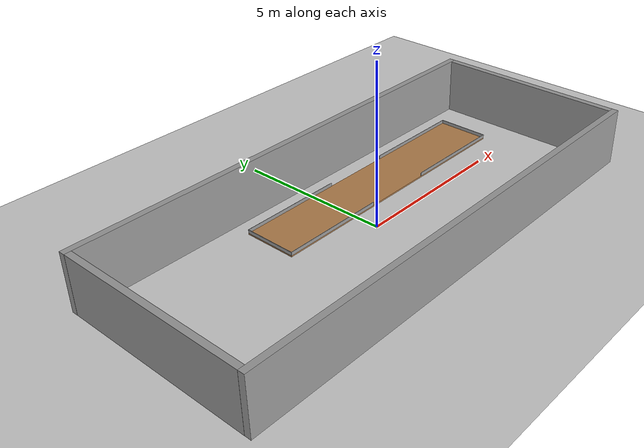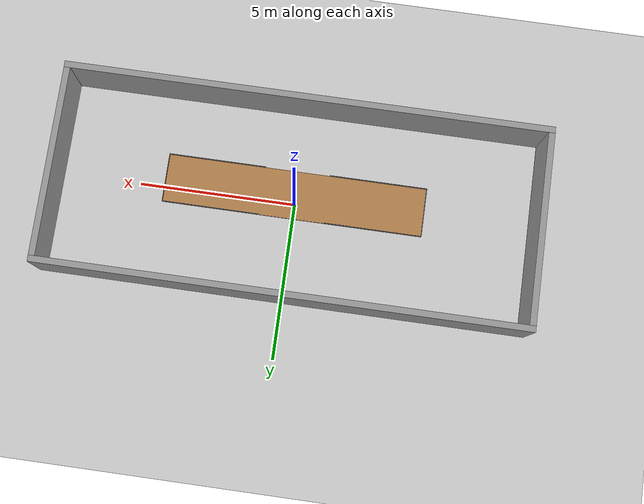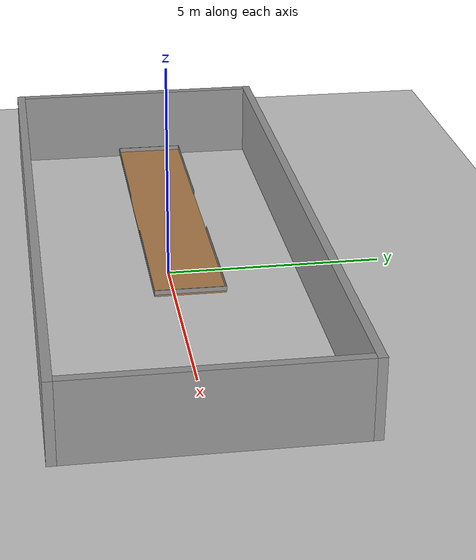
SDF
<sdf version="1.4">
 <world name="default">
  <include><uri>model://ground_plane</uri></include>
  <include><uri>model://sun</uri></include>
  <physics type="ode">
   <max_step_size>0.01</max_step_size>
   <real_time_factor>1</real_time_factor>
   <real_time_update_rate>100</real_time_update_rate>
   <gravity>0.000000 0.000000 -9.810000</gravity>
   <ode>
    <solver><type>quick</type><iters>100</iters><precon_iters>0</precon_iters><sor>1.000000</sor></solver>
    <constraints>
     <cfm>0.000000</cfm>
     <erp>0.500000</erp>
     <contact_max_correcting_vel>1000.000000</contact_max_correcting_vel>
     <contact_surface_layer>0.000000</contact_surface_layer>
    </constraints>
   </ode>
  </physics>
  <model name="desk">
   <static>1</static>
   <pose frame="ground_plane">0 0 1.48 0 0 0</pose>
   <link name="desk">
    <gravity>0</gravity>
    <collision name="desk_collision">
     <geometry><box><size>8 1.5 0.04</size></box></geometry>
     <surface>
      <friction><ode><mu>0.8</mu><mu2>0.8</mu2><slip1>0.5</slip1><slip2>0.5</slip2></ode></friction>
     </surface>
    </collision>
    <visual name="desk_visual">
     <geometry><box><size>8 1.5 0.04</size></box></geometry>
     <material>
      <script><uri>file://media/materials/scripts/gazebo.material</uri><name>Gazebo/Wood</name></script>
     </material>
    </visual>
    <inertial>
     <mass>100</mass>
     <inertia><ixx>1</ixx><ixy>0</ixy><ixz>0</ixz><iyy>1</iyy><iyz>0</iyz><izz>1</izz></inertia>
    </inertial>
   </link>
  </model>
  <model name="back_barrier">
   <static>true</static>
   <link name="link">
    <pose>-4 0 1.55 0 0 1.57</pose>
    <collision name="collision"><geometry><box><size>1.5 0.01 0.1</size></box></geometry></collision>
    <visual name="visual">
     <cast_shadows>false</cast_shadows>
     <geometry><box><size>1.5 0.01 0.1</size></box></geometry>
     <material>
      <script>
       <uri>model://grey_wall/materials/scripts</uri>
       <uri>model://grey_wall/materials/textures</uri>
       <name>vrc/grey_wall</name>
      </script>
     </material>
    </visual>
   </link>
  </model>
  <model name="left_back_barrier">
   <static>true</static>
   <link name="link">
    <pose>-2.5 0.75 1.55 0 0 1.57</pose>
    <collision name="collision"><geometry><box><size>0.01 3.0 0.1</size></box></geometry></collision>
    <visual name="visual">
     <cast_shadows>false</cast_shadows>
     <geometry><box><size>0.01 3.0 0.1</size></box></geometry>
     <material>
      <script>
       <uri>model://grey_wall/materials/scripts</uri>
       <uri>model://grey_wall/materials/textures</uri>
       <name>vrc/grey_wall</name>
      </script>
     </material>
    </visual>
   </link>
  </model>
  <model name="left_back_barrier">
   <static>true</static>
   <link name="link">
    <pose>-2.5 -0.75 1.55 0 0 1.57</pose>
    <collision name="collision"><geometry><box><size>0.01 3.0 0.1</size></box></geometry></collision>
    <visual name="visual">
     <cast_shadows>false</cast_shadows>
     <geometry><box><size>0.01 3.0 0.1</size></box></geometry>
     <material>
      <script>
       <uri>model://grey_wall/materials/scripts</uri>
       <uri>model://grey_wall/materials/textures</uri>
       <name>vrc/grey_wall</name>
      </script>
     </material>
    </visual>
   </link>
  </model>
  <model name="front_barrier">
   <static>true</static>
   <link name="link">
    <pose>4 0 1.55 0 0 1.57</pose>
    <collision name="collision"><geometry><box><size>1.5 0.01 0.1</size></box></geometry></collision>
    <visual name="visual">
     <cast_shadows>false</cast_shadows>
     <geometry><box><size>1.5 0.01 0.1</size></box></geometry>
     <material>
      <script>
       <uri>model://grey_wall/materials/scripts</uri>
       <uri>model://grey_wall/materials/textures</uri>
       <name>vrc/grey_wall</name>
      </script>
     </material>
    </visual>
   </link>
  </model>
  <model name="left_front_barrier">
   <static>true</static>
   <link name="link">
    <pose>2.5 0.75 1.55 0 0 1.57</pose>
    <collision name="collision"><geometry><box><size>0.01 3.0 0.1</size></box></geometry></collision>
    <visual name="visual">
     <cast_shadows>false</cast_shadows>
     <geometry><box><size>0.01 3.0 0.1</size></box></geometry>
     <material>
      <script>
       <uri>model://grey_wall/materials/scripts</uri>
       <uri>model://grey_wall/materials/textures</uri>
       <name>vrc/grey_wall</name>
      </script>
     </material>
    </visual>
   </link>
  </model>
  <model name="left_front_barrier">
   <static>true</static>
   <link name="link">
    <pose>2.5 -0.75 1.55 0 0 1.57</pose>
    <collision name="collision"><geometry><box><size>0.01 3.0 0.1</size></box></geometry></collision>
    <visual name="visual">
     <cast_shadows>false</cast_shadows>
     <geometry><box><size>0.01 3.0 0.1</size></box></geometry>
     <material>
      <script>
       <uri>model://grey_wall/materials/scripts</uri>
       <uri>model://grey_wall/materials/textures</uri>
       <name>vrc/grey_wall</name>
      </script>
     </material>
    </visual>
   </link>
  </model>
  <model name="east_grey_wall">
   <static>true</static>
   <link name="link">
    <pose>7.6 0 0.9 0 0 1.57</pose>
    <collision name="collision"><geometry><box><size>6 0.2 1.8</size></box></geometry></collision>
    <visual name="visual">
     <cast_shadows>false</cast_shadows>
     <geometry><box><size>6 0.2 1.8</size></box></geometry>
     <material>
      <script>
       <uri>model://grey_wall/materials/scripts</uri>
       <uri>model://grey_wall/materials/textures</uri>
       <name>vrc/grey_wall</name>
      </script>
     </material>
    </visual>
   </link>
  </model>
  <model name="west_grey_wall">
   <static>true</static>
   <link name="link">
    <pose>-7.6 0 0.9 0 0 1.57</pose>
    <collision name="collision"><geometry><box><size>6 0.2 1.8</size></box></geometry></collision>
    <visual name="visual">
     <cast_shadows>false</cast_shadows>
     <geometry><box><size>6 0.2 1.8</size></box></geometry>
     <material>
      <script>
       <uri>model://grey_wall/materials/scripts</uri>
       <uri>model://grey_wall/materials/textures</uri>
       <name>vrc/grey_wall</name>
      </script>
     </material>
    </visual>
   </link>
  </model>
  <model name="north_grey_wall">
   <static>true</static>
   <link name="link">
    <pose>0 3.1 0.9 0 0 0</pose>
    <collision name="collision"><geometry><box><size>15.4 0.2 1.8</size></box></geometry></collision>
    <visual name="visual">
     <cast_shadows>false</cast_shadows>
     <geometry><box><size>15.4 0.2 1.8</size></box></geometry>
     <material>
      <script>
       <uri>model://grey_wall/materials/scripts</uri>
       <uri>model://grey_wall/materials/textures</uri>
       <name>vrc/grey_wall</name>
      </script>
     </material>
    </visual>
   </link>
  </model>
  <model name="south_grey_wall">
   <static>true</static>
   <link name="link">
    <pose>0 -3.1 0.9 0 0 0</pose>
    <collision name="collision"><geometry><box><size>15.4 0.2 1.8</size></box></geometry></collision>
    <visual name="visual">
     <cast_shadows>false</cast_shadows>
     <geometry><box><size>15.4 0.2 1.8</size></box></geometry>
     <material>
      <script>
       <uri>model://grey_wall/materials/scripts</uri>
       <uri>model://grey_wall/materials/textures</uri>
       <name>vrc/grey_wall</name>
      </script>
     </material>
    </visual>
   </link>
  </model>
 </world>
</sdf>
